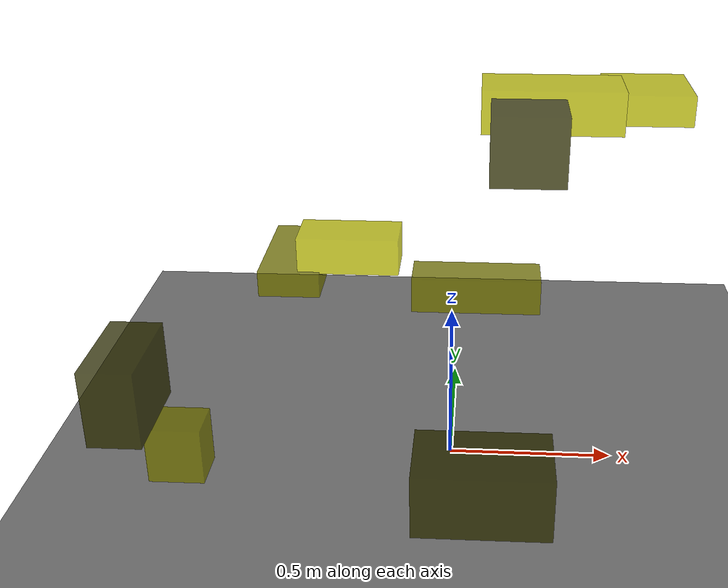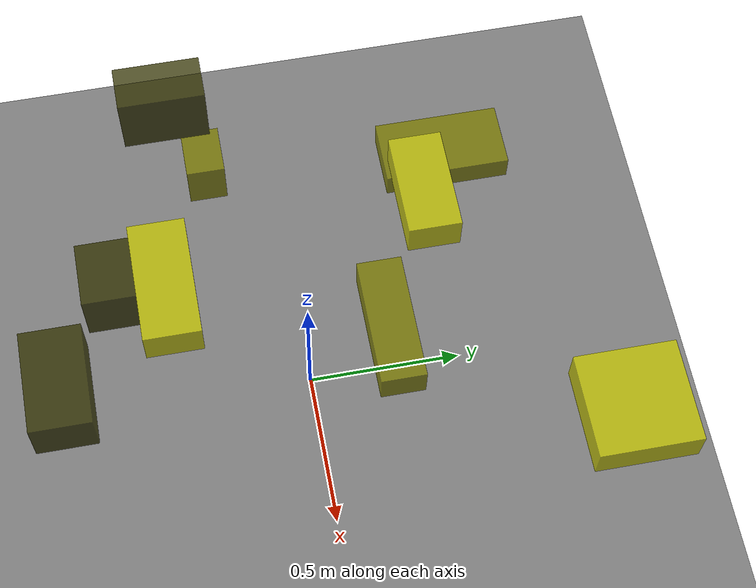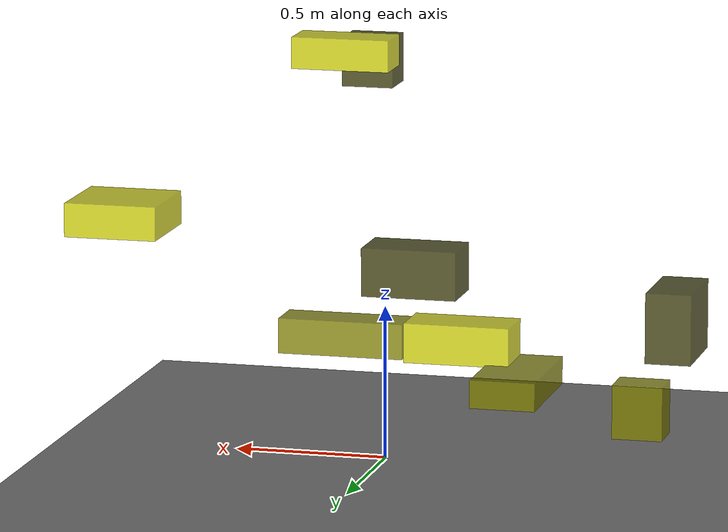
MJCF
<?xml version="1.0"?>
<mujoco model="obstacle_scene">
  <compiler angle="radian" coordinate="local"/>
  <option timestep="0.001" gravity="0 0 -9.81"/>

  <asset>
    <material name="obstacle_mat" rgba="0.8 0.8 0.0 0.8"/>
    <material name="ground_mat" rgba="0.5 0.5 0.5 1"/>
  </asset>

  <worldbody>
    <!-- Ground plane -->
    <geom name="ground" type="plane" size="3 3 0.1" material="ground_mat"/>

    <!-- Obstacles -->
    <body name="obstacle_0" pos="0.095883 -0.777092 0.459408">
      <geom name="obs_0" type="box" size="0.162636 0.095592 0.082096" rgba="0.2 0.2 0.0 0.8"/>
    </body>
    <body name="obstacle_1" pos="0.069339 0.245647 0.457821">
      <geom name="obs_1" type="box" size="0.202788 0.069688 0.056125" rgba="0.5 0.5 0.0 0.8"/>
    </body>
    <body name="obstacle_2" pos="0.639673 0.786837 0.928202">
      <geom name="obs_2" type="box" size="0.145910 0.142556 0.052663" rgba="0.8 0.8 0.0 0.8"/>
    </body>
    <body name="obstacle_3" pos="0.180728 -0.538466 1.211601">
      <geom name="obs_3" type="box" size="0.085242 0.072138 0.081283" rgba="0.2 0.2 0.0 0.8"/>
    </body>
    <body name="obstacle_4" pos="-0.555919 0.536776 0.403821">
      <geom name="obs_4" type="box" size="0.102927 0.198490 0.043920" rgba="0.5 0.5 0.0 0.8"/>
    </body>
    <body name="obstacle_5" pos="-0.357294 0.435053 0.503519">
      <geom name="obs_5" type="box" size="0.168545 0.083487 0.062070" rgba="0.8 0.8 0.0 0.8"/>
    </body>
    <body name="obstacle_6" pos="-0.888134 -0.338947 0.429031">
      <geom name="obs_6" type="box" size="0.075002 0.142297 0.115535" rgba="0.2 0.2 0.0 0.8"/>
    </body>
    <body name="obstacle_7" pos="-0.794471 -0.230272 0.154174">
      <geom name="obs_7" type="box" size="0.082642 0.063780 0.088754" rgba="0.5 0.5 0.0 0.8"/>
    </body>
    <body name="obstacle_8" pos="0.237111 -0.396535 1.258639">
      <geom name="obs_8" type="box" size="0.163289 0.074481 0.051588" rgba="0.8 0.8 0.0 0.8"/>
    </body>
  </worldbody>
</mujoco>
